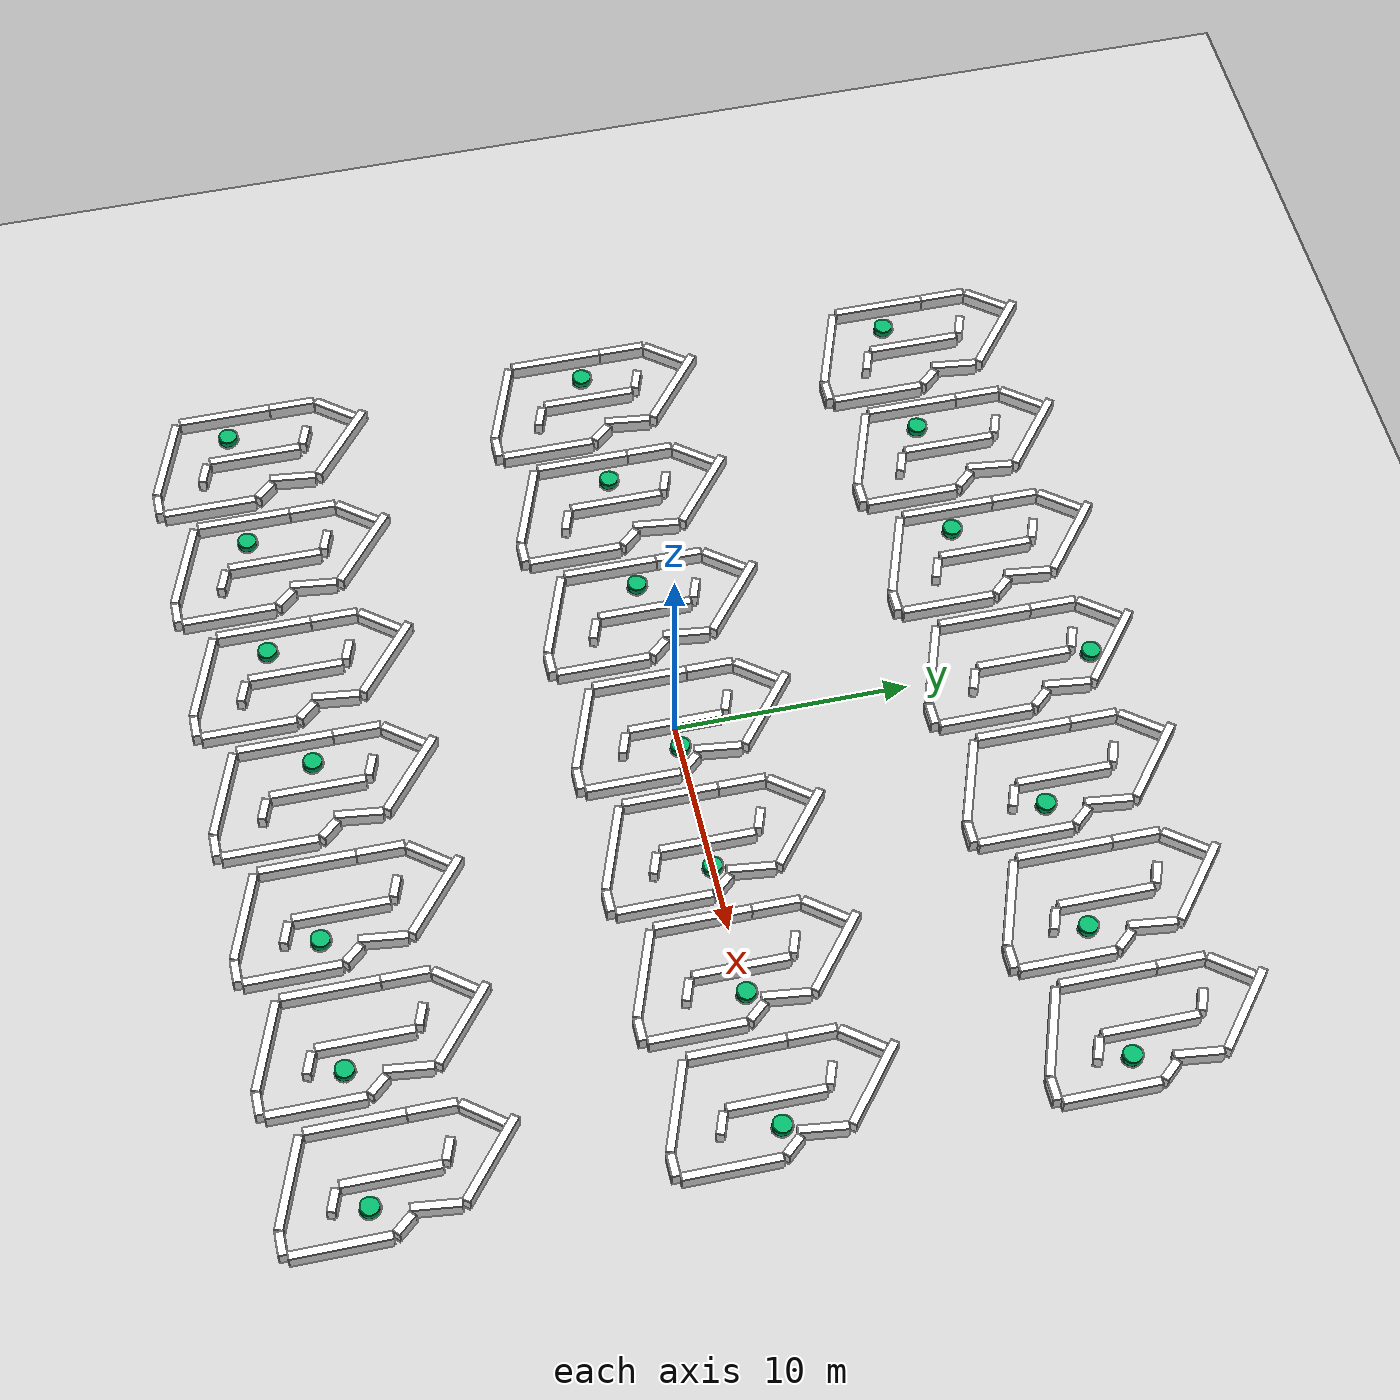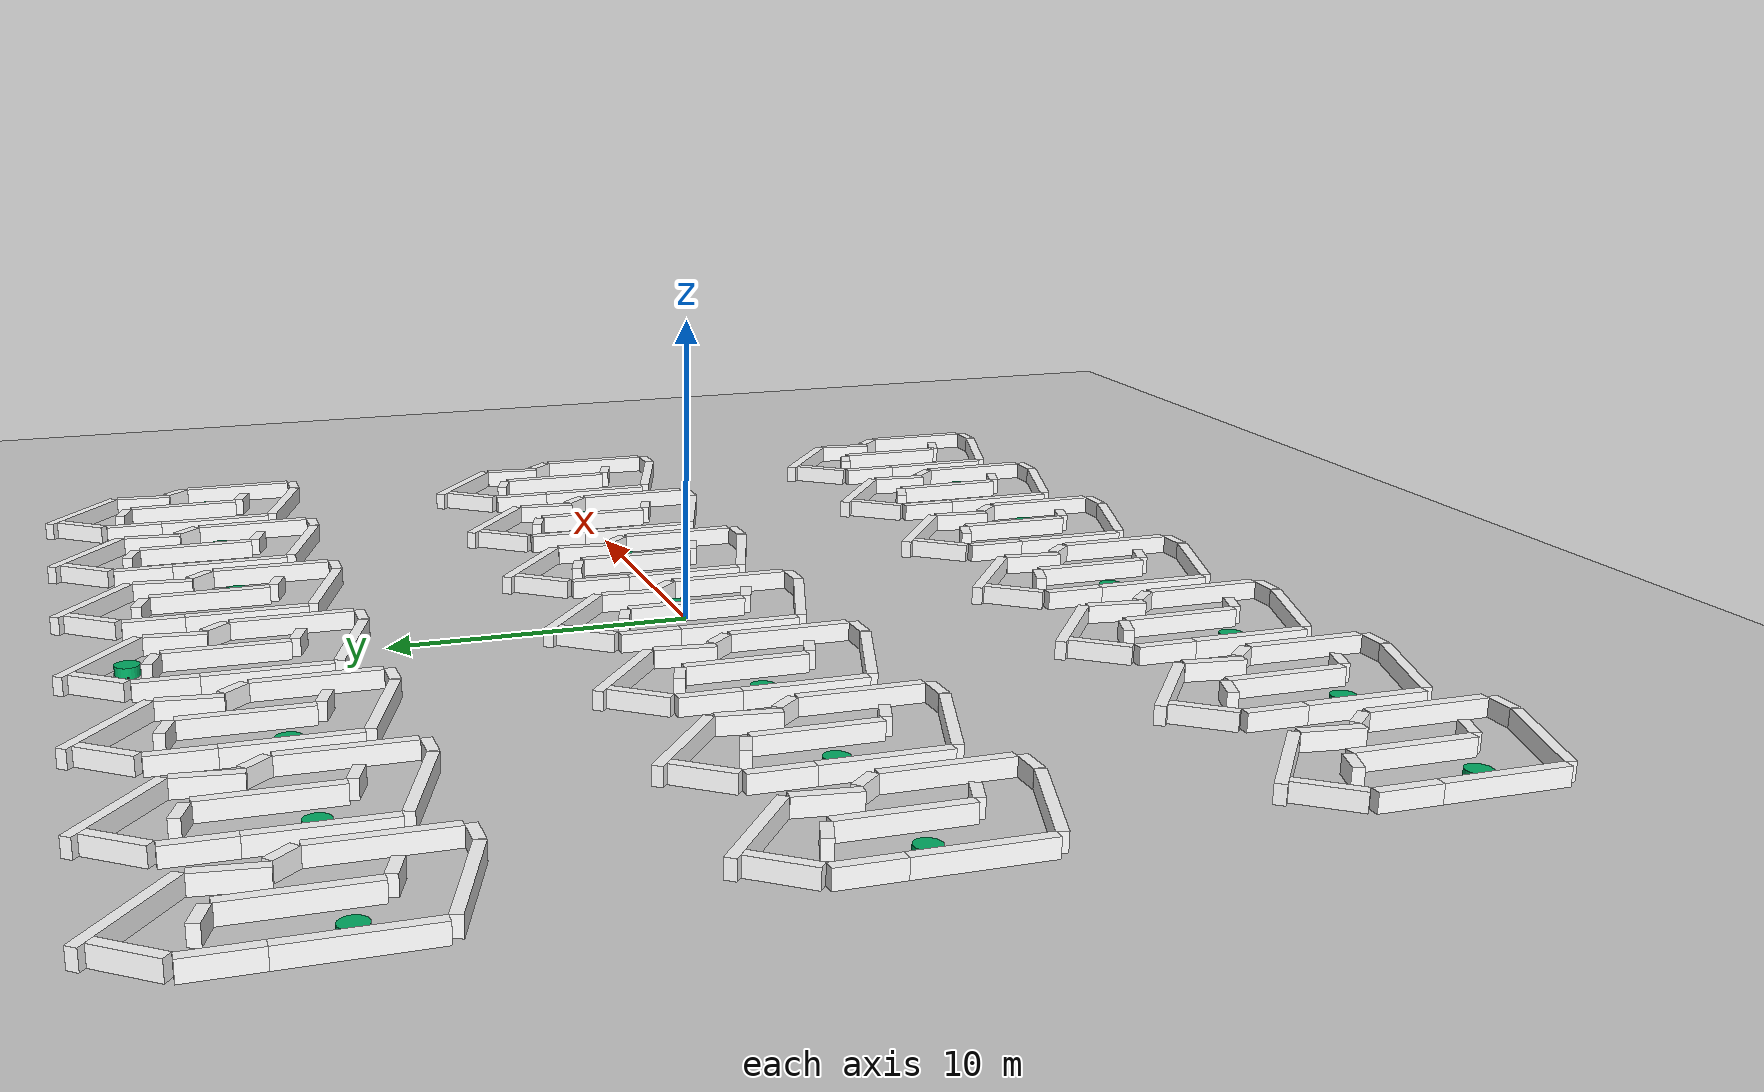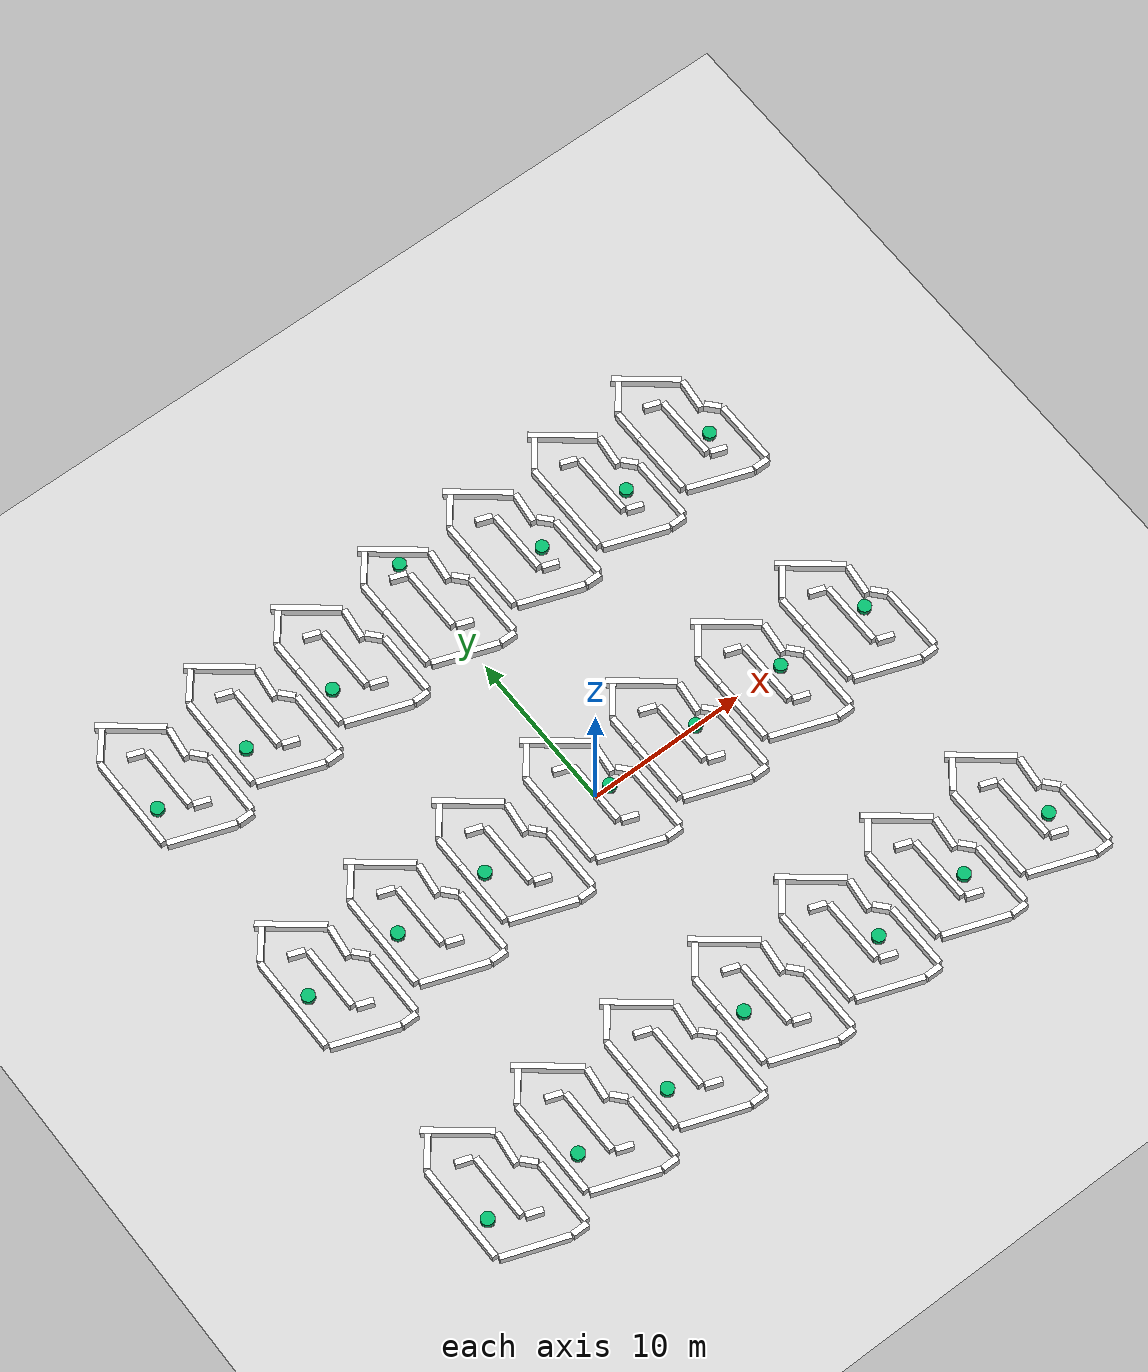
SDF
<?xml version="1.0" ?>

<sdf version="1.5">
	<world name="my_world">
		<!-- A global light source -->
		<include>
			<uri>model://sun</uri>
		</include>

		<!-- A ground plane -->
		<include>
			<uri>model://ground_plane</uri>
		</include>

		<!-- Robots -->

		<include>
		    <uri>model://robot</uri>
		    <name>robot1</name>
		    <pose>1 0 0 0 0 0</pose>
		</include>

		<include>
		    <uri>model://robot</uri>
		    <name>robot2</name>
		    <pose>0 18 0 0 0 0</pose>
		</include>

		<include>
		    <uri>model://robot</uri>
		    <name>robot3</name>
		    <pose>-1.5 -15 0 0 0 0</pose>
		</include>

		<!-- Abajo del centro primera fila -->
		<include>
		    <uri>model://robot</uri>
		    <name>robot4</name>
		    <pose>7 0 0 0 0 0</pose>
		</include>

		<include>
		    <uri>model://robot</uri>
		    <name>robot5</name>
		    <pose>7 14 0 0 0 0</pose>
		</include>

		<include>
		    <uri>model://robot</uri>
		    <name>robot6</name>
		    <pose>7 -16 0 0 0 0</pose>
		</include>

		<!-- Arriba del centro primera fila -->
		<include>
		    <uri>model://robot</uri>
		    <name>robot7</name>
		    <pose>-7.6 0 0 0 0 0</pose>
		</include>

		<include>
		    <uri>model://robot</uri>
		    <name>robot8</name>
		    <pose>-7.6 14 0 0 0 0</pose>
		</include>

		<include>
		    <uri>model://robot</uri>
		    <name>robot9</name>
		    <pose>-7.5 -16 0 0 0 0</pose>
		</include>

		<!-- Abajo del centro segunda fila -->
		<include>
		    <uri>model://robot</uri>
		    <name>robot10</name>
		    <pose>13 0 0 0 0 0</pose>
		</include>

		<include>
		    <uri>model://robot</uri>
		    <name>robot11</name>
		    <pose>13 14 0 0 0 0</pose>
		</include>

		<include>
		    <uri>model://robot</uri>
		    <name>robot12</name>
		    <pose>13 -16 0 0 0 0</pose>
		</include>

		<!-- Arriba del centro segunda fila -->
		<include>
		    <uri>model://robot</uri>
		    <name>robot13</name>
		    <pose>-13.5 0 0 0 0 0</pose>
		</include>

		<include>
		    <uri>model://robot</uri>
		    <name>robot14</name>
		    <pose>-13.5 14 0 0 0 0</pose>
		</include>

		<include>
		    <uri>model://robot</uri>
		    <name>robot15</name>
		    <pose>-13.5 -16 0 0 0 0</pose>
		</include>

		<!-- Abajo del centro tercera fila -->
		<include>
		    <uri>model://robot</uri>
		    <name>robot16</name>
		    <pose>19 0 0 0 0 0</pose>
		</include>

		<include>
		    <uri>model://robot</uri>
		    <name>robot17</name>
		    <pose>19 14 0 0 0 0</pose>
		</include>

		<include>
		    <uri>model://robot</uri>
		    <name>robot18</name>
		    <pose>19 -16 0 0 0 0</pose>
		</include>

		<!-- Arriba del centro tercera fila -->
		<include>
		    <uri>model://robot</uri>
		    <name>robot19</name>
		    <pose>-19.5 0 0 0 0 0</pose>
		</include>

		<include>
		    <uri>model://robot</uri>
		    <name>robot20</name>
		    <pose>-19.5 14 0 0 0 0</pose>
		</include>

		<include>
		    <uri>model://robot</uri>
		    <name>robot21</name>
		    <pose>-19.5 -16 0 0 0 0</pose>
		</include>

		<!-- Mazes -->

		<include>
		    <uri>model://default_maze</uri>
		    <name>maze1</name>
		    <pose>0 0 0 0 0 0</pose>
		</include>

		<include>
		    <uri>model://default_maze</uri>
		    <name>maze2</name>
		    <pose>0 15 0 0 0 0</pose>
		</include>

		<include>
		    <uri>model://default_maze</uri>
		    <name>maze3</name>
		    <pose>0 -15 0 0 0 0</pose>
		</include>

               <!-- Abajo del centro primera fila -->
               <include>
		    <uri>model://default_maze</uri>
		    <name>maze4</name>
		    <pose>6 0 0 0 0 0</pose>
		</include>

		<include>
		    <uri>model://default_maze</uri>
		    <name>maze5</name>
		    <pose>6 15 0 0 0 0</pose>
		</include>

		<include>
		    <uri>model://default_maze</uri>
		    <name>maze6</name>
		    <pose>6 -15 0 0 0 0</pose>
		</include>

		<!-- Arriba del centro primera fila -->
		<include>
		    <uri>model://default_maze</uri>
		    <name>maze7</name>
		    <pose>-6 0 0 0 0 0</pose>
		</include>

		<include>
		    <uri>model://default_maze</uri>
		    <name>maze8</name>
		    <pose>-6 15 0 0 0 0</pose>
		</include>

		<include>
		    <uri>model://default_maze</uri>
		    <name>maze9</name>
		    <pose>-6 -15 0 0 0 0</pose>
		</include>

		<!-- Abajo del centro segunda fila -->
		<include>
		    <uri>model://default_maze</uri>
		    <name>maze10</name>
		    <pose>12 0 0 0 0 0</pose>
		</include>

		<include>
		    <uri>model://default_maze</uri>
		    <name>maze11</name>
		    <pose>12 15 0 0 0 0</pose>
		</include>

		<include>
		    <uri>model://default_maze</uri>
		    <name>maze12</name>
		    <pose>12 -15 0 0 0 0</pose>
		</include>

		<!-- Arriba del centro segunda fila -->
		<include>
		    <uri>model://default_maze</uri>
		    <name>maze13</name>
		    <pose>-12 0 0 0 0 0</pose>
		</include>

		<include>
		    <uri>model://default_maze</uri>
		    <name>maze14</name>
		    <pose>-12 15 0 0 0 0</pose>
		</include>

		<include>
		    <uri>model://default_maze</uri>
		    <name>maze15</name>
		    <pose>-12 -15 0 0 0 0</pose>
		</include>

		<!-- Abajo del centro tercera fila -->
		<include>
		    <uri>model://default_maze</uri>
		    <name>maze16</name>
		    <pose>18 0 0 0 0 0</pose>
		</include>

		<include>
		    <uri>model://default_maze</uri>
		    <name>maze17</name>
		    <pose>18 15 0 0 0 0</pose>
		</include>

		<include>
		    <uri>model://default_maze</uri>
		    <name>maze18</name>
		    <pose>18 -15 0 0 0 0</pose>
		</include>

		<!-- Arriba del centro tercera fila -->
		<include>
		    <uri>model://default_maze</uri>
		    <name>maze19</name>
		    <pose>-18 0 0 0 0 0</pose>
		</include>

		<include>
		    <uri>model://default_maze</uri>
		    <name>maze20</name>
		    <pose>-18 15 0 0 0 0</pose>
		</include>

		<include>
		    <uri>model://default_maze</uri>
		    <name>maze21</name>
		    <pose>-18 -15 0 0 0 0</pose>
		</include>

	</world>
</sdf>

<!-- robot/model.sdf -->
<sdf version="1.4">
   <model name="robot">
      <static>false</static>

      <link name="base_link">
         <pose>0 0 0.1 0 0 0</pose>
         <inertial>
            <inertia>
               <ixx>0</ixx>
               <iyy>0</iyy>
               <izz>0</izz>
               <ixy>0</ixy>
               <ixz>0</ixz>
               <iyz>0</iyz>
            </inertia>
            <mass>4.5</mass>
         </inertial>
         <collision name="collision">
            <geometry>
               <cylinder>
                  <radius>0.4</radius>
		  <length>0.4</length>
               </cylinder>
            </geometry>
         </collision>
         <visual name="visual">
            <geometry>
               <cylinder>
                  <radius>0.4</radius>
                  <length>0.4</length>
               </cylinder>
            </geometry>
            <material>
               <ambient>0 0.7 0.4 1</ambient>
               <diffuse>0 0.7 0.4 1</diffuse>
               <specular>0.1 0.1 0.1 1</specular>
               <emissive>0 0 0 0</emissive>
            </material>
         </visual>
         <collision name="caster_collision_front">
            <pose>0.3 0 -0.2 0 0 0</pose>
            <geometry>
               <sphere>
                  <radius>.05</radius>
               </sphere>
            </geometry>
            <surface>
               <friction>
                  <ode>
                     <mu>0.0</mu>
                     <mu2>0.0</mu2>
                     <slip1>0.0</slip1>
                     <slip2>0.0</slip2>
                  </ode>
               </friction>
            </surface>
         </collision>
         <visual name="caster_visual_front">
            <pose>0.3 0 -0.2 0 0 0</pose>
            <geometry>
               <sphere>
                  <radius>.05</radius>
               </sphere>
            </geometry>
         </visual>
         <collision name="caster_collision_back">
            <pose>-0.3 0 -0.2 0 0 0</pose>
            <geometry>
               <sphere>
                  <radius>.05</radius>
               </sphere>
            </geometry>
            <surface>
               <friction>
                  <ode>
                     <mu>0.0</mu>
                     <mu2>0.0</mu2>
                     <slip1>0.0</slip1>
                     <slip2>0.0</slip2>
                  </ode>
               </friction>
            </surface>
         </collision>
         <visual name="caster_visual_back">
            <pose>-0.3 0 -0.2 0 0 0</pose>
            <geometry>
               <sphere>
                  <radius>.05</radius>
               </sphere>
            </geometry>
         </visual>
      </link>

      <link name="left_wheel">
         <pose>0 0.4 -0.051 0 1.5707 1.5707</pose>
         <collision name="collision">
            <geometry>
               <cylinder>
                  <radius>.1</radius>
                  <length>.05</length>
               </cylinder>
            </geometry>
         </collision>
         <visual name="visual">
            <geometry>
               <cylinder>
                  <radius>.1</radius>
                  <length>.05</length>
               </cylinder>
            </geometry>
            <material>
               <ambient>0.7 0.7 0.7 1</ambient>
               <diffuse>0.7 0.7 0.7 1</diffuse>
               <specular>0.1 0.1 0.1 1</specular>
               <emissive>0 0 0 0</emissive>
            </material>
         </visual>
      </link>

      <link name="right_wheel">
         <pose>0 -0.4 -0.051 0 1.5707 1.5707</pose>
         <collision name="collision">
            <geometry>
               <cylinder>
                  <radius>.1</radius>
                  <length>.05</length>
               </cylinder>
            </geometry>
         </collision>
         <visual name="visual">
            <geometry>
               <cylinder>
                  <radius>.1</radius>
                  <length>.05</length>
               </cylinder>
            </geometry>
            <material>
               <ambient>0.7 0.7 0.7 1</ambient>
               <diffuse>0.7 0.7 0.7 1</diffuse>
               <specular>0.1 0.1 0.1 1</specular>
               <emissive>0 0 0 0</emissive>
            </material>
         </visual>
      </link>

      <!-- Front Laser -->
      <link name="laser_front">
         <pose>0.4 0 0.0 0.000000 0.000000 0.000000</pose>
         <gravity>0</gravity>
         <inertial>
            <mass>0.100000</mass>
            <inertia>
               <ixx>1.000000</ixx>
               <ixy>0.000000</ixy>
               <ixz>0.000000</ixz>
               <iyy>1.000000</iyy>
               <iyz>0.000000</iyz>
               <izz>1.000000</izz>
            </inertia>
         </inertial>
         <visual name="visual">
            <geometry>
               <cylinder>
                  <radius>.03</radius>
                  <length>.06</length>
               </cylinder>
            </geometry>
            <material>
               <ambient>0.2 0.2 0.2 1</ambient>
               <diffuse>0.2 0.2 0.2 1</diffuse>
               <specular>0.1 0.1 0.1 1</specular>
               <emissive>0 0 0 0</emissive>
            </material>
         </visual>

         <collision name="collision-base">
            <pose>0.000000 0.000000 -0.014500 0.000000 0.000000 0.000000</pose>
            <geometry>
               <box>
                  <size>0.050000 0.050000 0.041000</size>
               </box>
            </geometry>
            <max_contacts>10</max_contacts>
         </collision>
         <collision name="collision-top">
            <pose>0.000000 0.000000 0.020500 0.000000 0.000000 0.000000</pose>
            <geometry>
               <cylinder>
                  <radius>0.021000</radius>
                  <length>0.029000</length>
               </cylinder>
            </geometry>
            <max_contacts>10</max_contacts>
         </collision>

         <sensor name="laser_front" type="ray">
            <ray>
               <scan>
                  <horizontal>
                     <samples>6</samples>
                     <resolution>1.000000</resolution>
                     <min_angle>-1.570000</min_angle>
                     <max_angle>1.570000</max_angle>
                  </horizontal>
               </scan>
               <range>
                  <min>0.080000</min>
                  <max>10.000000</max>
                  <resolution>0.010000</resolution>
               </range>
            </ray>
            <update_rate>20.000000</update_rate>
            <always_on>1</always_on>
            <visualize>1</visualize>

            <plugin name="gazebo_ros_head_hokuyo_controller" filename="libgazebo_ros_laser.so">
               <topicName>laser_front/scan</topicName>
               <frameName>laser_front</frameName>
               <robotNamespace></robotNamespace>
            </plugin>
         </sensor>

         <velocity_decay>
            <linear>0.000000</linear>
            <angular>0.000000</angular>
         </velocity_decay>
         <self_collide>0</self_collide>
         <kinematic>0</kinematic>
      </link>

      <!-- Back Laser -->
      <link name="laser_back">
         <pose>-0.4 0 0.0  0.0 0.0 3.1415</pose>
         <gravity>0</gravity>
         <inertial>
            <mass>0.100000</mass>
            <inertia>
               <ixx>1.000000</ixx>
               <ixy>0.000000</ixy>
               <ixz>0.000000</ixz>
               <iyy>1.000000</iyy>
               <iyz>0.000000</iyz>
               <izz>1.000000</izz>
            </inertia>
         </inertial>
         <visual name="visual">
            <geometry>
               <cylinder>
                  <radius>.03</radius>
                  <length>.06</length>
               </cylinder>
            </geometry>
            <material>
               <ambient>0.2 0.2 0.2 1</ambient>
               <diffuse>0.2 0.2 0.2 1</diffuse>
               <specular>0.1 0.1 0.1 1</specular>
               <emissive>0 0 0 0</emissive>
            </material>
         </visual>

         <collision name="collision-base">
            <pose>0.000000 0.000000 -0.014500 0.000000 0.000000 0.000000</pose>
            <geometry>
               <box>
                  <size>0.050000 0.050000 0.041000</size>
               </box>
            </geometry>
            <max_contacts>10</max_contacts>
         </collision>
         <collision name="collision-top">
            <pose>0.000000 0.000000 0.020500 0.000000 0.000000 0.000000</pose>
            <geometry>
               <cylinder>
                  <radius>0.021000</radius>
                  <length>0.029000</length>
               </cylinder>
            </geometry>
            <max_contacts>10</max_contacts>
         </collision>

         <sensor name="laser_back" type="ray">
            <ray>
               <scan>
                  <horizontal>
                     <samples>2</samples>
                     <resolution>1.000000</resolution>
                     <min_angle>-0.2618</min_angle>
                     <max_angle>0.2618</max_angle>
                  </horizontal>
               </scan>
               <range>
                  <min>0.080000</min>
                  <max>10.000000</max>
                  <resolution>0.010000</resolution>
               </range>
            </ray>
            <update_rate>20.000000</update_rate>
            <always_on>1</always_on>
            <visualize>1</visualize>

            <plugin name="gazebo_ros_head_hokuyo_controller" filename="libgazebo_ros_laser.so">
               <topicName>laser_back/scan</topicName>
               <frameName>laser_back</frameName>
               <robotNamespace></robotNamespace>
            </plugin>
         </sensor>

         <velocity_decay>
            <linear>0.000000</linear>
            <angular>0.000000</angular>
         </velocity_decay>
         <self_collide>0</self_collide>
         <kinematic>0</kinematic>
      </link>

      <joint type="revolute" name="left_wheel_joint">
         <pose>0 0 -0.03 0 0 0</pose>
         <child>left_wheel</child>
         <parent>base_link</parent>
         <axis>
            <xyz>0 1 0</xyz>
         </axis>
      </joint>

      <joint type="revolute" name="right_wheel_joint">
         <pose>0 0 0.03 0 0 0</pose>
         <child>right_wheel</child>
         <parent>base_link</parent>
         <axis>
            <xyz>0 1 0</xyz>
         </axis>
      </joint>

      <joint name="joint_laser_front" type="fixed">
         <parent>base_link</parent>
         <child>laser_front</child>
         <axis>
            <xyz>0.000000 0.000000 0.000000</xyz>
            <limit>
               <lower>0.000000</lower>
               <upper>0.000000</upper>
            </limit>
         </axis>
      </joint>

      <joint name="joint_laser_back" type="fixed">
         <parent>base_link</parent>
         <child>laser_back</child>
         <axis>
            <xyz>0.000000 0.000000 0.000000</xyz>
            <limit>
               <lower>0.000000</lower>
               <upper>0.000000</upper>
            </limit>
         </axis>
      </joint>

      <plugin name="p3d_base_controller" filename="libgazebo_ros_p3d.so">
        <alwaysOn>true</alwaysOn>
        <updateRate>50.0</updateRate>
        <bodyName>base_link</bodyName>
        <topicName>ground_truth/state</topicName>
        <gaussianNoise>0.01</gaussianNoise>
        <frameName>world</frameName>
        <xyzOffsets>0 0 0</xyzOffsets>
        <rpyOffsets>0 0 0</rpyOffsets>
      </plugin>

      <!-- Attach the ROS Differential Drive Plugin to this model> -->
      <plugin name="differential_drive_controller" filename="libgazebo_ros_diff_drive.so">
         <robotNamespace />
         <alwaysOn>true</alwaysOn>
         <updateRate>10</updateRate>
         <legacyMode>true</legacyMode>
         <leftJoint>left_wheel_joint</leftJoint>
         <rightJoint>right_wheel_joint</rightJoint>
         <wheelSeparation>0.8</wheelSeparation>
         <wheelDiameter>0.2</wheelDiameter>
         <torque>20</torque>
         <commandTopic>cmd_vel</commandTopic>
         <odometryTopic>odom</odometryTopic>
         <odometryFrame>odom</odometryFrame>
         <robotBaseFrame>base_link</robotBaseFrame>
         <publishWheelTF>false</publishWheelTF>
         <publishWheelJointState>false</publishWheelJointState>
         <rosDebugLevel>na</rosDebugLevel>
         <wheelAcceleration>0</wheelAcceleration>
         <wheelTorque>5</wheelTorque>
         <odometrySource>world</odometrySource>
         <publishTf>1</publishTf>
      </plugin>

   </model>
</sdf>

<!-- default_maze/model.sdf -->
<sdf version='1.0'>
  <model name='default_maze'>
        <include>
            <uri>model://large_wall</uri>
            <name>wall_01</name>
            <pose>-2.5 -1 0.3 0 0 1.57</pose>
        </include>

        <include>
            <uri>model://medium_wall</uri>
            <name>wall_02</name>
            <pose>-2.5 2 0.3 0 0 1.57</pose>
        </include>

        <include>
            <uri>model://medium_wall</uri>
            <name>wall_03</name>
            <pose>-1.82 3.88 0.3 0 0 0.9</pose>
        </include>

        <include>
            <uri>model://large_wall</uri>
            <name>wall_04</name>
            <pose>0 0 0.3 0 0 1.57</pose>
        </include>

        <include>
            <uri>model://small_wall</uri>
            <name>wall_05</name>
            <pose>-0.6 2.3 0.3 0 0 2.8</pose>
        </include>

        <include>
            <uri>model://small_wall</uri>
            <name>wall_06</name>
            <pose>0.6 -2.3 0.3 0 0 2.8</pose>
        </include>

        <include>
            <uri>model://large_wall</uri>
            <name>wall_07</name>
            <pose>-0.5 -3.83 0.3 0 0 2.8</pose>
        </include>

        <include>
            <uri>model://large_wall</uri>
            <name>wall_08</name>
            <pose>2.5 -2.325 0.3 0 0 1.57</pose>
        </include>

        <include>
            <uri>model://large_wall</uri>
            <name>wall_09</name>
            <pose>0.15 3.82 0.3 0 0 2.47</pose>
        </include>

        <include>
            <uri>model://small_wall</uri>
            <name>wall_10</name>
            <pose>2.125 0.16 0.3 0 0 2.3</pose>
        </include>

        <include>
            <uri>model://medium_wall</uri>
            <name>wall_11</name>
            <pose>1.625 1.44 0.3 0 0 1.45</pose>
        </include>

        <include>
            <uri>model://small_wall</uri>
            <name>wall_12</name>
            <pose>1.94 -4.5 0.3 0 0 0</pose>
        </include>
    <static>1</static>
    <allow_auto_disable>1</allow_auto_disable>
  </model>
</sdf>

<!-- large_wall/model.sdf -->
<sdf version='1.0'>
  <model name='large_wall'>
    <link name='large_wall_10'>
      <pose frame=''>0 0 0 0 -0 0</pose>
      <self_collide>0</self_collide>
      <enable_wind>0</enable_wind>
      <kinematic>0</kinematic>
      <gravity>1</gravity>
      <inertial>
        <mass>1</mass>
        <pose frame=''>0 0 0 0 -0 0</pose>
        <inertia>
          <ixx>1</ixx>
          <ixy>0</ixy>
          <ixz>0</ixz>
          <iyy>1</iyy>
          <iyz>0</iyz>
          <izz>1</izz>
        </inertia>
      </inertial>
      <visual name='large_wall_10_Visual_0'>
        <pose frame=''>0 0 0 0 -0 0</pose>
        <geometry>
          <box>
            <size>4 0.35 0.6</size>
          </box>
        </geometry>
        <material>
          <script>
            <uri>model://large_wall/materials/scripts</uri>
            <uri>model://large_wall/materials/textures</uri>
            <name>large_wall</name>
          </script>
          <shader type='pixel'>
            <normal_map>__default__</normal_map>
          </shader>
          <ambient>1 1 1 1</ambient>
          <diffuse>1 1 1 1</diffuse>
          <specular>0 0 0 1</specular>
          <emissive>0 0 0 1</emissive>
        </material>
        <meta>
          <layer>0</layer>
        </meta>
        <transparency>0</transparency>
        <cast_shadows>1</cast_shadows>
      </visual>
      <collision name='large_wall_10_Collision_0'>
        <laser_retro>0</laser_retro>
        <max_contacts>10</max_contacts>
        <pose frame=''>0 0 0 0 -0 0</pose>
        <geometry>
          <box>
            <size>4 0.35 0.6</size>
          </box>
        </geometry>
        <surface>
          <friction>
            <ode>
              <mu>1</mu>
              <mu2>1</mu2>
              <fdir1>0 0 0</fdir1>
              <slip1>0</slip1>
              <slip2>0</slip2>
            </ode>
            <torsional>
              <coefficient>1</coefficient>
              <patch_radius>0</patch_radius>
              <surface_radius>0</surface_radius>
              <use_patch_radius>1</use_patch_radius>
              <ode>
                <slip>0</slip>
              </ode>
            </torsional>
          </friction>
          <bounce>
            <restitution_coefficient>0</restitution_coefficient>
            <threshold>1e+06</threshold>
          </bounce>
          <contact>
            <collide_without_contact>0</collide_without_contact>
            <collide_without_contact_bitmask>1</collide_without_contact_bitmask>
            <collide_bitmask>1</collide_bitmask>
            <ode>
              <soft_cfm>0</soft_cfm>
              <soft_erp>0.2</soft_erp>
              <kp>1e+13</kp>
              <kd>1</kd>
              <max_vel>0.01</max_vel>
              <min_depth>0</min_depth>
            </ode>
            <bullet>
              <split_impulse>1</split_impulse>
              <split_impulse_penetration_threshold>-0.01</split_impulse_penetration_threshold>
              <soft_cfm>0</soft_cfm>
              <soft_erp>0.2</soft_erp>
              <kp>1e+13</kp>
              <kd>1</kd>
            </bullet>
          </contact>
        </surface>
      </collision>
    </link>
    <static>1</static>
    <allow_auto_disable>1</allow_auto_disable>
  </model>
</sdf>

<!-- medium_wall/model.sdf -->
<sdf version='1.0'>
  <model name='medium_wall'>
    <link name='medium_wall_10'>
      <pose frame=''>0 0 0 0 -0 0</pose>
      <self_collide>0</self_collide>
      <enable_wind>0</enable_wind>
      <kinematic>0</kinematic>
      <gravity>1</gravity>
      <inertial>
        <mass>1</mass>
        <pose frame=''>0 0 0 0 -0 0</pose>
        <inertia>
          <ixx>1</ixx>
          <ixy>0</ixy>
          <ixz>0</ixz>
          <iyy>1</iyy>
          <iyz>0</iyz>
          <izz>1</izz>
        </inertia>
      </inertial>
      <visual name='medium_wall_10_Visual_0'>
        <pose frame=''>0 0 0 0 -0 0</pose>
        <geometry>
          <box>
            <size>2 0.35 0.6</size>
          </box>
        </geometry>
        <material>
          <script>
            <uri>model://medium_wall/materials/scripts</uri>
            <uri>model://medium_wall/materials/textures</uri>
            <name>medium_wall</name>
          </script>
          <shader type='pixel'>
            <normal_map>__default__</normal_map>
          </shader>
          <ambient>1 1 1 1</ambient>
          <diffuse>1 1 1 1</diffuse>
          <specular>0 0 0 1</specular>
          <emissive>0 0 0 1</emissive>
        </material>
        <meta>
          <layer>0</layer>
        </meta>
        <transparency>0</transparency>
        <cast_shadows>1</cast_shadows>
      </visual>
      <collision name='medium_wall_10_Collision_0'>
        <laser_retro>0</laser_retro>
        <max_contacts>10</max_contacts>
        <pose frame=''>0 0 0 0 -0 0</pose>
        <geometry>
          <box>
            <size>2 0.35 0.6</size>
          </box>
        </geometry>
        <surface>
          <friction>
            <ode>
              <mu>1</mu>
              <mu2>1</mu2>
              <fdir1>0 0 0</fdir1>
              <slip1>0</slip1>
              <slip2>0</slip2>
            </ode>
            <torsional>
              <coefficient>1</coefficient>
              <patch_radius>0</patch_radius>
              <surface_radius>0</surface_radius>
              <use_patch_radius>1</use_patch_radius>
              <ode>
                <slip>0</slip>
              </ode>
            </torsional>
          </friction>
          <bounce>
            <restitution_coefficient>0</restitution_coefficient>
            <threshold>1e+06</threshold>
          </bounce>
          <contact>
            <collide_without_contact>0</collide_without_contact>
            <collide_without_contact_bitmask>1</collide_without_contact_bitmask>
            <collide_bitmask>1</collide_bitmask>
            <ode>
              <soft_cfm>0</soft_cfm>
              <soft_erp>0.2</soft_erp>
              <kp>1e+13</kp>
              <kd>1</kd>
              <max_vel>0.01</max_vel>
              <min_depth>0</min_depth>
            </ode>
            <bullet>
              <split_impulse>1</split_impulse>
              <split_impulse_penetration_threshold>-0.01</split_impulse_penetration_threshold>
              <soft_cfm>0</soft_cfm>
              <soft_erp>0.2</soft_erp>
              <kp>1e+13</kp>
              <kd>1</kd>
            </bullet>
          </contact>
        </surface>
      </collision>
    </link>
    <static>1</static>
    <allow_auto_disable>1</allow_auto_disable>
  </model>
</sdf>

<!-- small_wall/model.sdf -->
<sdf version='1.0'>
  <model name='small_wall'>
    <link name='small_wall_10'>
      <pose frame=''>0 0 0 0 -0 0</pose>
      <self_collide>0</self_collide>
      <enable_wind>0</enable_wind>
      <kinematic>0</kinematic>
      <gravity>1</gravity>
      <inertial>
        <mass>1</mass>
        <pose frame=''>0 0 0 0 -0 0</pose>
        <inertia>
          <ixx>1</ixx>
          <ixy>0</ixy>
          <ixz>0</ixz>
          <iyy>1</iyy>
          <iyz>0</iyz>
          <izz>1</izz>
        </inertia>
      </inertial>
      <visual name='small_wall_10_Visual_0'>
        <pose frame=''>0 0 0 0 -0 0</pose>
        <geometry>
          <box>
            <size>1 0.35 0.6</size>
          </box>
        </geometry>
        <material>
          <script>
            <uri>model://small_wall/materials/scripts</uri>
            <uri>model://small_wall/materials/textures</uri>
            <name>small_wall</name>
          </script>
          <shader type='pixel'>
            <normal_map>__default__</normal_map>
          </shader>
          <ambient>1 1 1 1</ambient>
          <diffuse>1 1 1 1</diffuse>
          <specular>0 0 0 1</specular>
          <emissive>0 0 0 1</emissive>
        </material>
        <meta>
          <layer>0</layer>
        </meta>
        <transparency>0</transparency>
        <cast_shadows>1</cast_shadows>
      </visual>
      <collision name='small_wall_10_Collision_0'>
        <laser_retro>0</laser_retro>
        <max_contacts>10</max_contacts>
        <pose frame=''>0 0 0 0 -0 0</pose>
        <geometry>
          <box>
            <size>1 0.35 0.6</size>
          </box>
        </geometry>
        <surface>
          <friction>
            <ode>
              <mu>1</mu>
              <mu2>1</mu2>
              <fdir1>0 0 0</fdir1>
              <slip1>0</slip1>
              <slip2>0</slip2>
            </ode>
            <torsional>
              <coefficient>1</coefficient>
              <patch_radius>0</patch_radius>
              <surface_radius>0</surface_radius>
              <use_patch_radius>1</use_patch_radius>
              <ode>
                <slip>0</slip>
              </ode>
            </torsional>
          </friction>
          <bounce>
            <restitution_coefficient>0</restitution_coefficient>
            <threshold>1e+06</threshold>
          </bounce>
          <contact>
            <collide_without_contact>0</collide_without_contact>
            <collide_without_contact_bitmask>1</collide_without_contact_bitmask>
            <collide_bitmask>1</collide_bitmask>
            <ode>
              <soft_cfm>0</soft_cfm>
              <soft_erp>0.2</soft_erp>
              <kp>1e+13</kp>
              <kd>1</kd>
              <max_vel>0.01</max_vel>
              <min_depth>0</min_depth>
            </ode>
            <bullet>
              <split_impulse>1</split_impulse>
              <split_impulse_penetration_threshold>-0.01</split_impulse_penetration_threshold>
              <soft_cfm>0</soft_cfm>
              <soft_erp>0.2</soft_erp>
              <kp>1e+13</kp>
              <kd>1</kd>
            </bullet>
          </contact>
        </surface>
      </collision>
    </link>
    <static>1</static>
    <allow_auto_disable>1</allow_auto_disable>
  </model>
</sdf>
